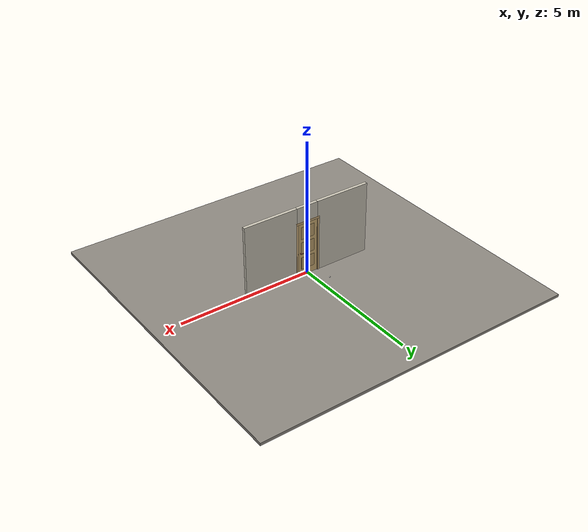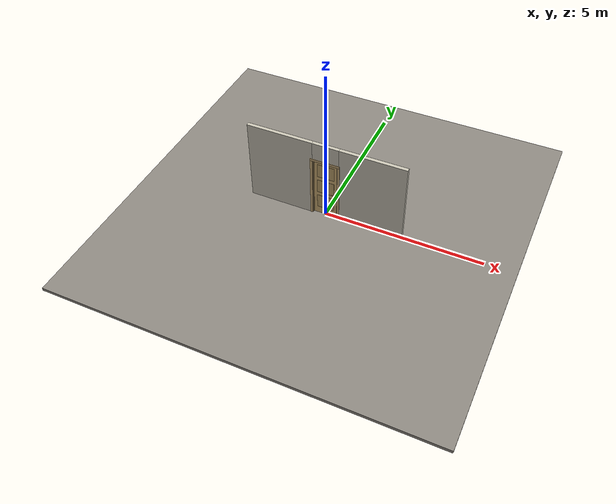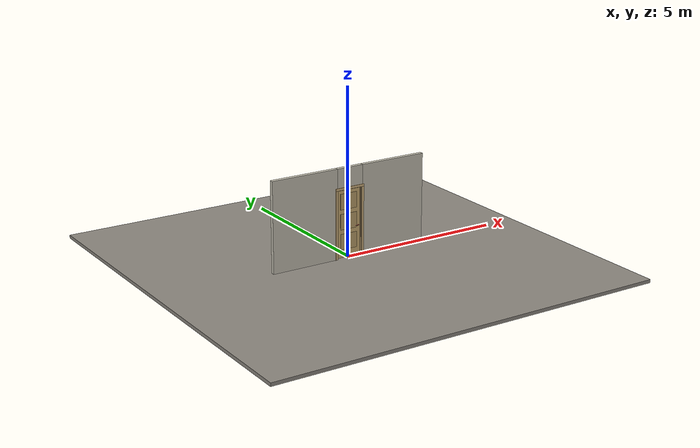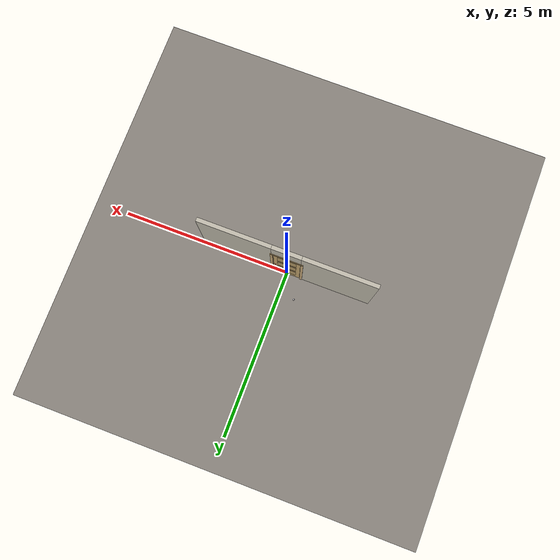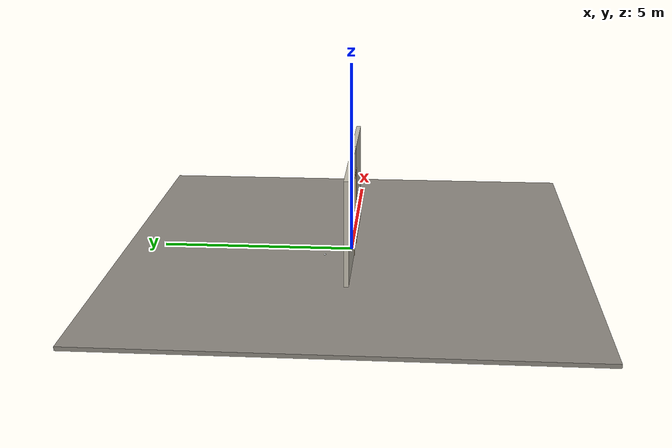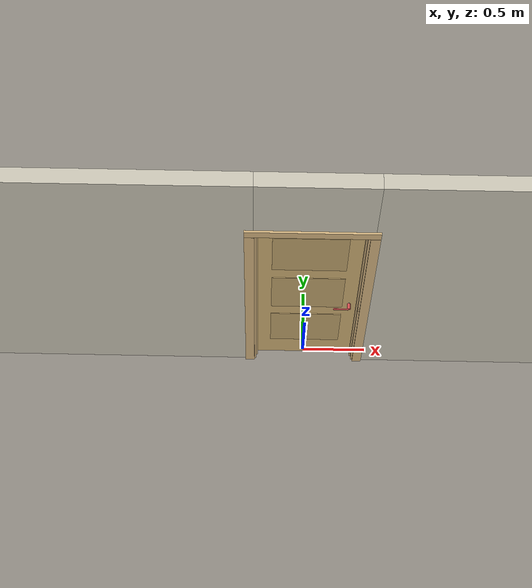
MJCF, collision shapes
<?xml version="1.0" ?>
<mujoco model="db0055_swing_single_full">
  <compiler angle="radian" meshdir="../../hardware" texturedir="../../textures" autolimits="true" inertiafromgeom="false"/>
  <option timestep="0.002" integrator="implicitfast" cone="elliptic" impratio="10" noslip_iterations="3">
    <flag multiccd="enable"/>
  </option>
  <size memory="16M"/>
  <default>
    <geom condim="4" solref="0.005 1" solimp="0.95 0.99 0.001"/>
    <joint solreflimit="0.005 1" solimplimit="0.95 0.99 0.001"/>
    <tendon solreflimit="0.005 1"/>
    <equality solref="0.002 1"/>
  </default>
  <visual>
    <headlight ambient="0.4 0.4 0.4" diffuse="0.7 0.7 0.7" specular="0.2 0.2 0.2"/>
    <quality shadowsize="4096"/>
    <map znear="0.01" zfar="60"/>
  </visual>
  <asset>
    <mesh name="hinge_2af0f4d6ca" file="hinge_2af0f4d6ca.obj"/>
    <mesh name="hinge_jamb_c0c0a62ada" file="hinge_jamb_c0c0a62ada.obj"/>
    <mesh name="lever_57205841c3" file="lever_57205841c3.obj"/>
    <material name="mat_floor" rgba="0.55 0.53 0.5 1" specular="0.2" shininess="0.15" reflectance="0"/>
    <material name="mat_wall" rgba="0.78 0.76 0.7 1" specular="0.2" shininess="0.1" reflectance="0"/>
    <material name="mat_leaf" rgba="0.8 0.68 0.45 1" specular="0.2" shininess="0.5" reflectance="0"/>
    <material name="mat_leaf_panel" rgba="0.736 0.626 0.414 1" specular="0.2" shininess="0.5" reflectance="0"/>
    <material name="mat_hinge" rgba="0.65 0.66 0.68 1" specular="0.74" shininess="0.5" reflectance="0.36"/>
    <material name="mat_op_black_matte_metal" rgba="0.05 0.05 0.05 1" specular="0.38" shininess="0.3" reflectance="0.12"/>
    <material name="mat_trim" rgba="0.85 0.66 0.3 1" specular="0.8" shininess="0.75" reflectance="0.4"/>
    <material name="mat_bolt" rgba="0.85 0.66 0.3 1" specular="0.8" shininess="0.75" reflectance="0.4"/>
    <material name="mat_frame" rgba="0.82 0.7 0.5 1" specular="0.2" shininess="0.45" reflectance="0"/>
    <material name="mat_stop" rgba="0.9 0.9 0.92 1" specular="0.8" shininess="0.9" reflectance="0.4"/>
    <texture name="skybox" type="skybox" builtin="gradient" rgb1="0.6 0.7 0.85" rgb2="0.9 0.92 0.95" width="256" height="256"/>
  </asset>
  <worldbody>
    <light name="sun" pos="1.5 -2.5 4" dir="-0.3 0.5 -0.8" directional="true" diffuse="0.8 0.8 0.8" specular="0.3 0.3 0.3" castshadow="true"/>
    <light name="fill" pos="-1.5 2.5 3" dir="0.3 -0.5 -0.7" directional="true" diffuse="0.35 0.35 0.4" castshadow="false"/>
    <camera name="robot_view" pos="0 -2.570688 1.734312" xyaxes="1 0 0 0 0.26963 0.962964" fovy="52"/>
    <camera name="far_view" pos="0 2.513687 1.734312" xyaxes="-1 0 0 0 -0.26963 0.962964" fovy="52"/>
    <camera name="iso" pos="1.932062 -2.163938 2.141063" xyaxes="0.741536 0.670913 0 -0.242917 0.268487 0.932151" fovy="46"/>
    <camera name="detail_handle" pos="0.404 -0.877 1.194" xyaxes="0.97561 0.219512 0 -0.070934 0.315262 0.94635" fovy="38"/>
    <geom name="floor" type="box" size="6 6 0.05" pos="0 0 -0.05" material="mat_floor" group="0" contype="1" conaffinity="1" friction="0.8 0.005 0.0001" density="2400"/>
    <geom name="wall_left" type="box" size="1.048 0.0575 1.35" pos="-1.452 -0.0285 1.35" material="mat_wall" group="0" contype="1" conaffinity="1" friction="0.6 0.005 0.0001" density="800"/>
    <geom name="wall_right" type="box" size="1.033 0.0575 1.35" pos="1.467 -0.0285 1.35" material="mat_wall" group="0" contype="1" conaffinity="1" friction="0.6 0.005 0.0001" density="800"/>
    <geom name="wall_header" type="box" size="0.419 0.0575 0.303" pos="0.015 -0.0285 2.397" material="mat_wall" group="0" contype="1" conaffinity="1" friction="0.6 0.005 0.0001" density="800"/>
    <geom name="hinge_0_jamb" type="mesh" mesh="hinge_jamb_c0c0a62ada" pos="-0.382 0.029 0.259" quat="0 1 0 0" material="mat_hinge" group="1" contype="0" conaffinity="0" density="7850"/>
    <geom name="hinge_1_jamb" type="mesh" mesh="hinge_jamb_c0c0a62ada" pos="-0.382 0.029 1.025" quat="0 1 0 0" material="mat_hinge" group="1" contype="0" conaffinity="0" density="7850"/>
    <geom name="hinge_2_jamb" type="mesh" mesh="hinge_jamb_c0c0a62ada" pos="-0.382 0.029 1.861" quat="0 1 0 0" material="mat_hinge" group="1" contype="0" conaffinity="0" density="7850"/>
    <geom name="jamb_hinge" type="box" size="0.0095 0.0575 1.0225" pos="-0.3945 -0.0285 1.0225" material="mat_frame" group="0" contype="1" conaffinity="1" friction="0.6 0.005 0.0001" density="400"/>
    <geom name="strike_914_wall_n" type="box" size="0.0245 0.039075 0.0167" pos="0.4095 -0.046925 0.914" material="mat_frame" group="0" contype="1" conaffinity="1" friction="0.6 0.005 0.0001" density="400"/>
    <geom name="strike_914_wall_p" type="box" size="0.0245 0.008 0.0167" pos="0.4095 0.01585 0.914" material="mat_frame" group="0" contype="1" conaffinity="1" friction="0.6 0.005 0.0001" density="400"/>
    <geom name="strike_914_ramp" type="box" size="0.0245 0.01649 0.0167" pos="0.414136 0.028673 0.914" quat="0.977148 0 0 -0.212558" material="mat_frame" group="0" contype="1" conaffinity="1" friction="0.12 0.005 0.0001" density="400"/>
    <geom name="strike_914_back" type="box" size="0.01615 0.00785 0.0167" pos="0.41785 0 0.914" material="mat_frame" group="0" contype="1" conaffinity="1" friction="0.6 0.005 0.0001" density="400"/>
    <geom name="jamb_strike_0" type="box" size="0.0245 0.0575 0.44865" pos="0.4095 -0.0285 0.44865" material="mat_frame" group="0" contype="1" conaffinity="1" friction="0.6 0.005 0.0001" density="400"/>
    <geom name="jamb_strike_1" type="box" size="0.0245 0.0575 0.55715" pos="0.4095 -0.0285 1.48785" material="mat_frame" group="0" contype="1" conaffinity="1" friction="0.6 0.005 0.0001" density="400"/>
    <geom name="jamb_head" type="box" size="0.419 0.0575 0.0095" pos="0.015 -0.0285 2.0545" material="mat_frame" group="0" contype="1" conaffinity="1" friction="0.6 0.005 0.0001" density="400"/>
    <geom name="head_stud" type="box" size="0.419 0.0575 0.015" pos="0.015 -0.0285 2.079" material="mat_wall" group="0" contype="1" conaffinity="1" friction="0.6 0.005 0.0001" density="500"/>
    <geom name="stop_hinge" type="box" size="0.0055 0.016 1.0225" pos="-0.3795 -0.0385 1.0225" material="mat_frame" group="0" contype="1" conaffinity="1" friction="0.6 0.005 0.0001" density="400"/>
    <geom name="stop_strike" type="box" size="0.0055 0.016 1.0225" pos="0.3795 -0.0385 1.0225" material="mat_frame" group="0" contype="1" conaffinity="1" friction="0.6 0.005 0.0001" density="400"/>
    <geom name="stop_head" type="box" size="0.385 0.016 0.0055" pos="0 -0.0385 2.0395" material="mat_frame" group="0" contype="1" conaffinity="1" friction="0.6 0.005 0.0001" density="400"/>
    <geom name="casing_l_n" type="box" size="0.035 0.008 1.032" pos="-0.434 -0.094 1.0225" material="mat_frame" group="2" contype="0" conaffinity="0" density="400"/>
    <geom name="casing_r_n" type="box" size="0.035 0.008 1.032" pos="0.434 -0.094 1.0225" material="mat_frame" group="2" contype="0" conaffinity="0" density="400"/>
    <geom name="casing_h_n" type="box" size="0.469 0.008 0.035" pos="0 -0.094 2.094" material="mat_frame" group="2" contype="0" conaffinity="0" density="400"/>
    <geom name="casing_l_p" type="box" size="0.035 0.008 1.032" pos="-0.434 0.037 1.0225" material="mat_frame" group="2" contype="0" conaffinity="0" density="400"/>
    <geom name="casing_r_p" type="box" size="0.035 0.008 1.032" pos="0.434 0.037 1.0225" material="mat_frame" group="2" contype="0" conaffinity="0" density="400"/>
    <geom name="casing_h_p" type="box" size="0.469 0.008 0.035" pos="0 0.037 2.094" material="mat_frame" group="2" contype="0" conaffinity="0" density="400"/>
    <geom name="floor_stop_dome" type="sphere" size="0.025" pos="-0.458375 0.672492 0" material="mat_stop" group="0" contype="1" conaffinity="1" friction="0.6 0.005 0.0001" density="7000"/>
    <site name="approach_point" pos="0 -1.5 0" quat="1 0 0 0" size="0.05" rgba="0.2 0.9 0.2 0.5" group="4"/>
    <site name="goal_point" pos="0 1.5 0" quat="1 0 0 0" size="0.05" rgba="0.2 0.9 0.2 0.5" group="4"/>
    <site name="door_plane_center" pos="0 0 1.0225" quat="1 0 0 0" size="0.02" rgba="0.2 0.9 0.2 0.5" group="4"/>
    <body name="leaf" pos="-0.385 0 0">
      <inertial pos="0.380442 0.000149 1.025205" mass="48.332364" quat="0.500206 0.49963 -0.500365 0.499799" diaginertia="2.392240359 16.672638088 19.048977998"/>
      <joint name="leaf_hinge" type="hinge" axis="0 0 1" pos="0.003 0.029 0" limited="true" range="0 1.658063" damping="0.173726" frictionloss="0.458758" armature="0.02"/>
      <geom name="leaf_slab" type="box" size="0.381 0.022 1.016" pos="0.384 0 1.025" material="mat_leaf" group="0" contype="1" conaffinity="1" friction="0.35 0.005 0.0001" density="1"/>
      <geom name="leaf_panel_0_n" type="box" size="0.271 0.003 0.23448" pos="0.384 -0.025 0.487" material="mat_leaf_panel" group="1" contype="0" conaffinity="0" density="1"/>
      <geom name="leaf_panel_0_p" type="box" size="0.271 0.003 0.23448" pos="0.384 0.025 0.487" material="mat_leaf_panel" group="1" contype="0" conaffinity="0" density="1"/>
      <geom name="leaf_panel_1_n" type="box" size="0.271 0.003 0.23448" pos="0.384 -0.025 1.08596" material="mat_leaf_panel" group="1" contype="0" conaffinity="0" density="1"/>
      <geom name="leaf_panel_1_p" type="box" size="0.271 0.003 0.23448" pos="0.384 0.025 1.08596" material="mat_leaf_panel" group="1" contype="0" conaffinity="0" density="1"/>
      <geom name="leaf_panel_2_n" type="box" size="0.271 0.003 0.23448" pos="0.384 -0.025 1.68492" material="mat_leaf_panel" group="1" contype="0" conaffinity="0" density="1"/>
      <geom name="leaf_panel_2_p" type="box" size="0.271 0.003 0.23448" pos="0.384 0.025 1.68492" material="mat_leaf_panel" group="1" contype="0" conaffinity="0" density="1"/>
      <geom name="hinge_0" type="mesh" mesh="hinge_2af0f4d6ca" pos="0.003 0.029 0.259" quat="0 1 0 0" material="mat_hinge" group="1" contype="0" conaffinity="0" density="7850"/>
      <geom name="hinge_1" type="mesh" mesh="hinge_2af0f4d6ca" pos="0.003 0.029 1.025" quat="0 1 0 0" material="mat_hinge" group="1" contype="0" conaffinity="0" density="7850"/>
      <geom name="hinge_2" type="mesh" mesh="hinge_2af0f4d6ca" pos="0.003 0.029 1.861" quat="0 1 0 0" material="mat_hinge" group="1" contype="0" conaffinity="0" density="7850"/>
      <geom name="leaf_latch_bolt_faceplate" type="box" size="0.0006 0.01235 0.0267" pos="0.7644 0 0.914" material="mat_bolt" group="1" contype="0" conaffinity="0" density="8500"/>
      <site name="leaf_edge_mid" pos="0.765 0 1.016" quat="1 0 0 0" size="0.02" rgba="0.2 0.9 0.2 0.5" group="4"/>
      <body name="leaf_handle" pos="0.705 0 0.914">
        <inertial pos="-0.018425 0 0" mass="0.806444" quat="0 0.707107 0.707107 0" diaginertia="0.001006485 0.002593405 0.00349528"/>
        <joint name="leaf_handle_hinge" type="hinge" axis="0 -1 0" limited="true" range="0 0.87" damping="0.212417" frictionloss="0.042" stiffness="1" springref="-0.35" armature="0.01"/>
        <geom name="leaf_handle_spindle" type="cylinder" size="0.006 0.03" pos="0 0 0" quat="0.707107 -0.707107 0 0" material="mat_op_black_matte_metal" group="1" contype="0" conaffinity="0" density="7850"/>
        <geom name="leaf_handle_lever_n" type="mesh" mesh="lever_57205841c3" pos="0 -0.022 0" quat="0.707107 0.707107 0 0" material="mat_op_black_matte_metal" group="1" contype="0" conaffinity="0" density="3000"/>
        <geom name="leaf_handle_lever_col_n" type="capsule" size="0.007 0.053" pos="-0.06 -0.077 0" quat="0.707107 0 -0.707107 0" material="mat_op_black_matte_metal" group="3" contype="1" conaffinity="1" rgba="0.8 0.3 0.3 0.25" friction="0.7 0.01 0.0001" density="3000"/>
        <geom name="leaf_handle_hub_col_n" type="cylinder" size="0.012 0.022" pos="0 -0.052 0" quat="0.707107 -0.707107 0 0" material="mat_op_black_matte_metal" group="3" contype="1" conaffinity="1" rgba="0.8 0.3 0.3 0.25" friction="0.6 0.005 0.0001" density="3000"/>
        <geom name="leaf_handle_lever_p" type="mesh" mesh="lever_57205841c3" pos="0 0.022 0" quat="-0.707107 0.707107 0 0" material="mat_op_black_matte_metal" group="1" contype="0" conaffinity="0" density="3000"/>
        <geom name="leaf_handle_lever_col_p" type="capsule" size="0.007 0.053" pos="-0.06 0.077 0" quat="0.707107 0 -0.707107 0" material="mat_op_black_matte_metal" group="3" contype="1" conaffinity="1" rgba="0.8 0.3 0.3 0.25" friction="0.7 0.01 0.0001" density="3000"/>
        <geom name="leaf_handle_hub_col_p" type="cylinder" size="0.012 0.022" pos="0 0.052 0" quat="0.707107 -0.707107 0 0" material="mat_op_black_matte_metal" group="3" contype="1" conaffinity="1" rgba="0.8 0.3 0.3 0.25" friction="0.6 0.005 0.0001" density="3000"/>
        <site name="leaf_handle_grip_n" pos="-0.096 -0.077 0" quat="1 0 0 0" size="0.012" rgba="0.2 0.9 0.2 0.5" group="4"/>
        <site name="leaf_handle_grip_p" pos="-0.096 0.077 0" quat="1 0 0 0" size="0.012" rgba="0.2 0.9 0.2 0.5" group="4"/>
      </body>
      <body name="leaf_latch_bolt" pos="0.765 0 0.914">
        <inertial pos="-0.00865 0 0" mass="0.041419" quat="0.92388 -0.382683 0 0" diaginertia="0.000000798 0.000005598 0.000005598"/>
        <joint name="leaf_latch_bolt_slide" type="slide" axis="-1 0 0" limited="true" range="0 0.0127" damping="2" frictionloss="0.3" stiffness="300" springref="-0.008333" armature="0.1"/>
        <geom name="leaf_latch_bolt_capsule" type="capsule" size="0.00635 0.015" pos="-0.00865 0 0" quat="0.707107 0 0.707107 0" material="mat_bolt" group="0" contype="1" conaffinity="1" friction="0.2 0.005 0.0001" density="8500"/>
      </body>
    </body>
  </worldbody>
  <tendon>
    <fixed name="leaf_latch_bolt_coupling" limited="true" range="0 10">
      <joint joint="leaf_latch_bolt_slide" coef="1"/>
      <joint joint="leaf_handle_hinge" coef="-0.015679"/>
    </fixed>
  </tendon>
  <sensor>
    <jointpos name="leaf_hinge_pos" joint="leaf_hinge"/>
    <jointvel name="leaf_hinge_vel" joint="leaf_hinge"/>
    <jointpos name="leaf_handle_hinge_pos" joint="leaf_handle_hinge"/>
    <jointvel name="leaf_handle_hinge_vel" joint="leaf_handle_hinge"/>
    <jointpos name="leaf_latch_bolt_slide_pos" joint="leaf_latch_bolt_slide"/>
    <jointvel name="leaf_latch_bolt_slide_vel" joint="leaf_latch_bolt_slide"/>
  </sensor>
</mujoco>
